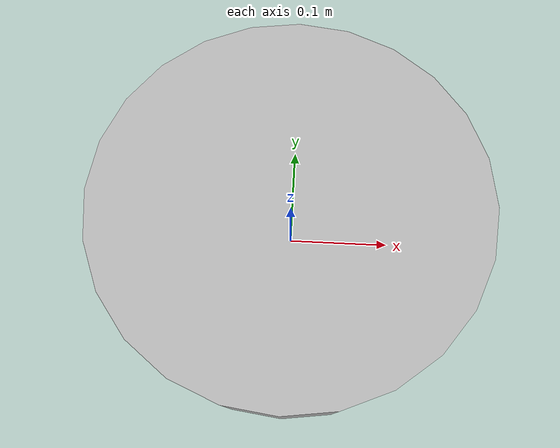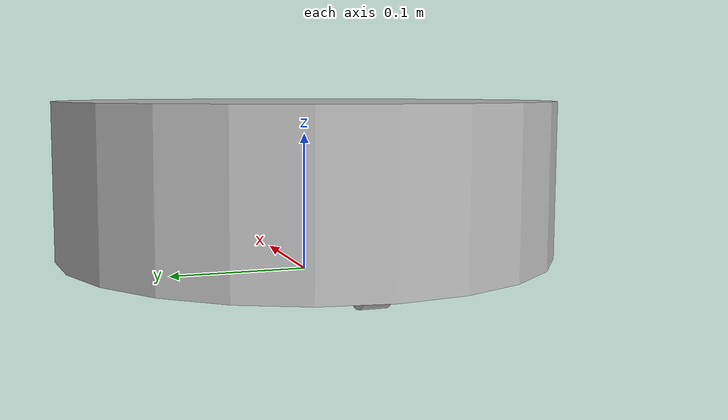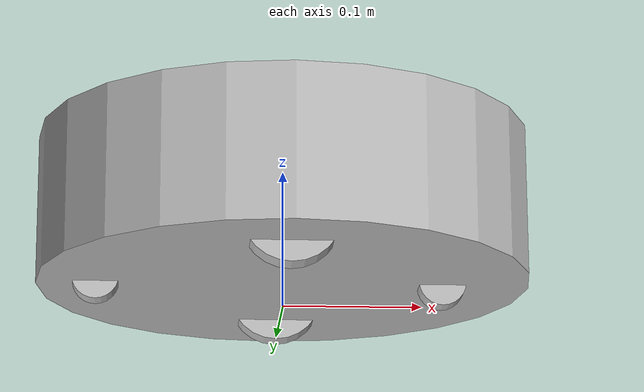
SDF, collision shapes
<sdf version='1.10'>
  <model name='kobuki_standalone'>
    <link name='base_footprint'>
      <inertial>
        <pose>0.0098661190269689787 2.5606079378846071e-05 0.010277074298930331 0 0 0</pose>
        <mass>2.4213</mass>
        <inertia>
          <ixx>0.022404373200837411</ixx>
          <ixy>-2.8921269603279239e-06</ixy>
          <ixz>4.107367532812852e-06</ixz>
          <iyy>0.022623695892294831</iyy>
          <iyz>-1.2476213934663191e-06</iyz>
          <izz>0.039483407004343579</izz>
        </inertia>
      </inertial>
      <collision name='base_footprint_fixed_joint_lump__base_collision'>
        <pose>0 0 0.069690000000000002 0 0 0</pose>
        <geometry>
          <cylinder>
            <length>0.10938000000000001</length>
            <radius>0.17799999999999999</radius>
          </cylinder>
        </geometry>
      </collision>
      <collision name='base_footprint_fixed_joint_lump__caster_back_link_collision_1'>
        <pose>-0.13500000000000001 0 0.019199999999999998 -1.5707963267948959 0 0</pose>
        <geometry>
          <cylinder>
            <length>0.017600000000000001</length>
            <radius>0.017000000000000001</radius>
          </cylinder>
        </geometry>
        <surface>
          <contact>
            <ode>
              <kp>1000000</kp>
              <kd>100</kd>
              <max_vel>1</max_vel>
              <min_depth>0.001</min_depth>
            </ode>
          </contact>
          <friction>
            <ode>
              <mu>0</mu>
              <mu2>0</mu2>
            </ode>
          </friction>
        </surface>
      </collision>
      <collision name='base_footprint_fixed_joint_lump__caster_front_link_collision_2'>
        <pose>0.115 0 0.0172 -1.5707963267948959 0 0</pose>
        <geometry>
          <cylinder>
            <length>0.017600000000000001</length>
            <radius>0.017000000000000001</radius>
          </cylinder>
        </geometry>
        <surface>
          <contact>
            <ode>
              <kp>1000000</kp>
              <kd>100</kd>
              <max_vel>1</max_vel>
              <min_depth>0.001</min_depth>
            </ode>
          </contact>
          <friction>
            <ode>
              <mu>0</mu>
              <mu2>0</mu2>
            </ode>
          </friction>
        </surface>
      </collision>
      <visual name='base_footprint_fixed_joint_lump__base_link_visual'>
        <pose>0.001 0 0.062190000000000002 0 0 0</pose>
        <geometry>
          <mesh>
            <scale>1 1 1</scale>
            <uri>model://kobuki_description/meshes/main_body.dae</uri>
          </mesh>
        </geometry>
      </visual>
      <sensor name='bumpers' type='contact'>
        <always_on>true</always_on>
        <update_rate>50</update_rate>
        <visualize>true</visualize>
        <contact>
          <collision>base_footprint_fixed_joint_lump__base_collision</collision>
          <topic>__default_topic__</topic>
        </contact>
        <pose>0 0 0.010200000000000001 0 0 0</pose>
      </sensor>
      <sensor name='cliff_sensor_front' type='ray'>
        <always_on>true</always_on>
        <update_rate>50</update_rate>
        <visualize>true</visualize>
        <ray>
          <scan>
            <horizontal>
              <samples>50</samples>
              <resolution>1</resolution>
              <min_angle>-0.0436</min_angle>
              <max_angle>0.0436</max_angle>
            </horizontal>
          </scan>
          <range>
            <min>0.01</min>
            <max>0.14999999999999999</max>
            <resolution>1</resolution>
          </range>
        </ray>
        <pose>0.156 0 0.031600000000000003 3.1415926535897931 1.5707926536359933 3.1415926535897931</pose>
      </sensor>
      <sensor name='cliff_sensor_left' type='ray'>
        <always_on>true</always_on>
        <update_rate>50</update_rate>
        <visualize>true</visualize>
        <ray>
          <scan>
            <horizontal>
              <samples>50</samples>
              <resolution>1</resolution>
              <min_angle>-0.0436</min_angle>
              <max_angle>0.0436</max_angle>
            </horizontal>
          </scan>
          <range>
            <min>0.01</min>
            <max>0.14999999999999999</max>
            <resolution>1</resolution>
          </range>
        </ray>
        <pose>0.087340000000000001 0.13600999999999999 0.031600000000000003 3.1415926535897931 1.5707926536359933 3.1415926535897931</pose>
      </sensor>
      <sensor name='cliff_sensor_right' type='ray'>
        <always_on>true</always_on>
        <update_rate>50</update_rate>
        <visualize>true</visualize>
        <ray>
          <scan>
            <horizontal>
              <samples>50</samples>
              <resolution>1</resolution>
              <min_angle>-0.0436</min_angle>
              <max_angle>0.0436</max_angle>
            </horizontal>
          </scan>
          <range>
            <min>0.01</min>
            <max>0.14999999999999999</max>
            <resolution>1</resolution>
          </range>
        </ray>
        <pose>0.085000000000000006 -0.13600999999999999 0.031600000000000003 3.1415926535897931 1.5707926536359933 3.1415926535897931</pose>
      </sensor>
      <sensor name='imu' type='imu'>
        <plugin name='gazebo_ros_imu_controller' filename='libgazebo_ros_imu_sensor.so'>
          <ros>
            <argument>~/out:=imu</argument>
          </ros>
          <output_type>sensor_msgs/msg/Imu</output_type>
          <body_name>gyro_link</body_name>
          <frame_name>gyro_link</frame_name>
        </plugin>
        <always_on>true</always_on>
        <update_rate>50</update_rate>
        <visualize>false</visualize>
        <imu>
          <noise>
            <type>gaussian</type>
            <rate>
              <mean>0.0</mean>
              <stddev>1.96e-06</stddev>
              <bias_mean>0.0</bias_mean>
              <bias_stddev>0.0</bias_stddev>
            </rate>
            <accel>
              <mean>0.0</mean>
              <stddev>1.7e-2</stddev>
              <bias_mean>0.1</bias_mean>
              <bias_stddev>0.001</bias_stddev>
            </accel>
          </noise>
        </imu>
        <pose>0.056000000000000001 0.062 0.0304 0 0 0</pose>
      </sensor>
    </link>
    <joint name='wheel_left_joint' type='revolute'>
      <pose relative_to='base_footprint'>0 0.115 0.035200000000000002 -1.5707963267948959 0 0</pose>
      <parent>base_footprint</parent>
      <child>wheel_left_link</child>
      <axis>
        <xyz>0 0 1</xyz>
        <limit>
          <lower>-inf</lower>
          <upper>inf</upper>
        </limit>
        <dynamics>
          <spring_reference>0</spring_reference>
          <spring_stiffness>0</spring_stiffness>
        </dynamics>
      </axis>
    </joint>
    <link name='wheel_left_link'>
      <pose relative_to='wheel_left_joint'>0 0 0 0 0 0</pose>
      <inertial>
        <pose>0 0 0 0 0 0</pose>
        <mass>0.01</mass>
        <inertia>
          <ixx>0.001</ixx>
          <ixy>0</ixy>
          <ixz>0</ixz>
          <iyy>0.001</iyy>
          <iyz>0</iyz>
          <izz>0.001</izz>
        </inertia>
      </inertial>
      <collision name='wheel_left_link_collision'>
        <pose>0 0 0 0 0 0</pose>
        <geometry>
          <cylinder>
            <length>0.0206</length>
            <radius>0.035000000000000003</radius>
          </cylinder>
        </geometry>
        <surface>
          <contact>
            <ode>
              <kp>1000000</kp>
              <kd>100</kd>
              <max_vel>1</max_vel>
              <min_depth>0.001</min_depth>
            </ode>
          </contact>
          <friction>
            <ode>
              <mu>1</mu>
              <mu2>1</mu2>
            </ode>
          </friction>
        </surface>
      </collision>
      <visual name='wheel_left_link_visual'>
        <pose>0 0 0 0 0 0</pose>
        <geometry>
          <mesh>
            <scale>1 1 1</scale>
            <uri>model://kobuki_description/meshes/wheel.dae</uri>
          </mesh>
        </geometry>
      </visual>
    </link>
    <joint name='wheel_right_joint' type='revolute'>
      <pose relative_to='base_footprint'>0 -0.115 0.035200000000000002 -1.5707963267948959 0 0</pose>
      <parent>base_footprint</parent>
      <child>wheel_right_link</child>
      <axis>
        <xyz>0 0 1</xyz>
        <limit>
          <lower>-inf</lower>
          <upper>inf</upper>
        </limit>
        <dynamics>
          <spring_reference>0</spring_reference>
          <spring_stiffness>0</spring_stiffness>
        </dynamics>
      </axis>
    </joint>
    <link name='wheel_right_link'>
      <pose relative_to='wheel_right_joint'>0 0 0 0 0 0</pose>
      <inertial>
        <pose>0 0 0 0 0 0</pose>
        <mass>0.01</mass>
        <inertia>
          <ixx>0.001</ixx>
          <ixy>0</ixy>
          <ixz>0</ixz>
          <iyy>0.001</iyy>
          <iyz>0</iyz>
          <izz>0.001</izz>
        </inertia>
      </inertial>
      <collision name='wheel_right_link_collision'>
        <pose>0 0 0 0 0 0</pose>
        <geometry>
          <cylinder>
            <length>0.0206</length>
            <radius>0.035000000000000003</radius>
          </cylinder>
        </geometry>
        <surface>
          <contact>
            <ode>
              <kp>1000000</kp>
              <kd>100</kd>
              <max_vel>1</max_vel>
              <min_depth>0.001</min_depth>
            </ode>
          </contact>
          <friction>
            <ode>
              <mu>1</mu>
              <mu2>1</mu2>
            </ode>
          </friction>
        </surface>
      </collision>
      <visual name='wheel_right_link_visual'>
        <pose>0 0 0 0 0 0</pose>
        <geometry>
          <mesh>
            <scale>1 1 1</scale>
            <uri>model://kobuki_description/meshes/wheel.dae</uri>
          </mesh>
        </geometry>
      </visual>
    </link>
    <plugin name='differential_drive_controller' filename='libgazebo_ros_diff_drive.so'>
      <update_rate>10</update_rate>
      <left_joint>wheel_left_joint</left_joint>
      <right_joint>wheel_right_joint</right_joint>
      <wheel_separation>0.230</wheel_separation>
      <wheel_diameter>0.070</wheel_diameter>
      <max_wheel_torque>1.0</max_wheel_torque>
      <max_wheel_acceleration>1.0</max_wheel_acceleration>
      <command_topic>cmd_vel</command_topic>
      <publish_odom>true</publish_odom>
      <publish_odom_tf>true</publish_odom_tf>
      <publish_wheel_tf>true</publish_wheel_tf>
      <odometry_topic>odom</odometry_topic>
      <odometry_frame>odom</odometry_frame>
      <robot_base_frame>base_link</robot_base_frame>
    </plugin>
    <frame name='caster_back_joint' attached_to='base_link'>
      <pose>-0.13500000000000001 0 0.0089999999999999993 -1.5707963267948959 0 0</pose>
    </frame>
    <frame name='caster_back_link' attached_to='caster_back_joint'>
      <pose>0 0 0 0 0 0</pose>
    </frame>
    <frame name='caster_front_joint' attached_to='base_link'>
      <pose>0.115 0 0.0070000000000000001 -1.5707963267948959 0 0</pose>
    </frame>
    <frame name='caster_front_link' attached_to='caster_front_joint'>
      <pose>0 0 0 0 0 0</pose>
    </frame>
    <frame name='cliff_sensor_front_joint' attached_to='base_link'>
      <pose>0.156 0 0.021399999999999999 0 1.5707963267948966 0</pose>
    </frame>
    <frame name='cliff_sensor_front_link' attached_to='cliff_sensor_front_joint'>
      <pose>0 0 0 0 0 0</pose>
    </frame>
    <frame name='cliff_sensor_left_joint' attached_to='base_link'>
      <pose>0.087340000000000001 0.13600999999999999 0.021399999999999999 0 1.5707963267948966 0</pose>
    </frame>
    <frame name='cliff_sensor_left_link' attached_to='cliff_sensor_left_joint'>
      <pose>0 0 0 0 0 0</pose>
    </frame>
    <frame name='cliff_sensor_right_joint' attached_to='base_link'>
      <pose>0.085000000000000006 -0.13600999999999999 0.021399999999999999 0 1.5707963267948966 0</pose>
    </frame>
    <frame name='cliff_sensor_right_link' attached_to='cliff_sensor_right_joint'>
      <pose>0 0 0 0 0 0</pose>
    </frame>
    <frame name='gyro_joint' attached_to='base_link'>
      <pose>0.056000000000000001 0.062 0.020199999999999999 0 0 0</pose>
    </frame>
    <frame name='gyro_link' attached_to='gyro_joint'>
      <pose>0 0 0 0 0 0</pose>
    </frame>
    <static>false</static>
    <frame name='base_joint' attached_to='base_footprint'>
      <pose>0 0 0.010200000000000001 0 0 0</pose>
    </frame>
    <frame name='base_link' attached_to='base_joint'>
      <pose>0 0 0 0 0 0</pose>
    </frame>
  </model>
</sdf>
